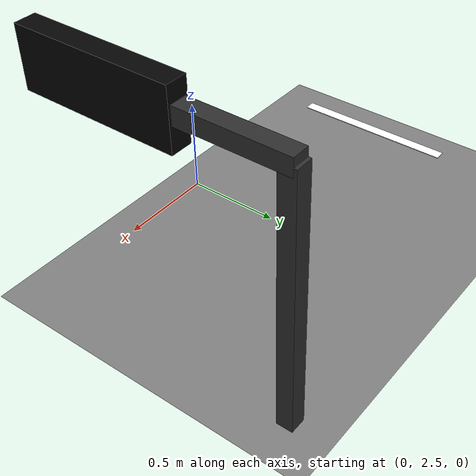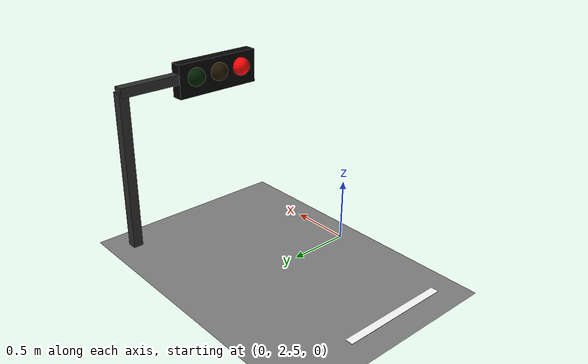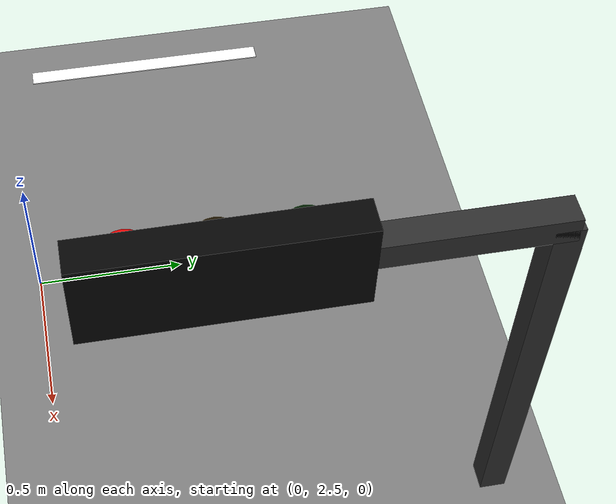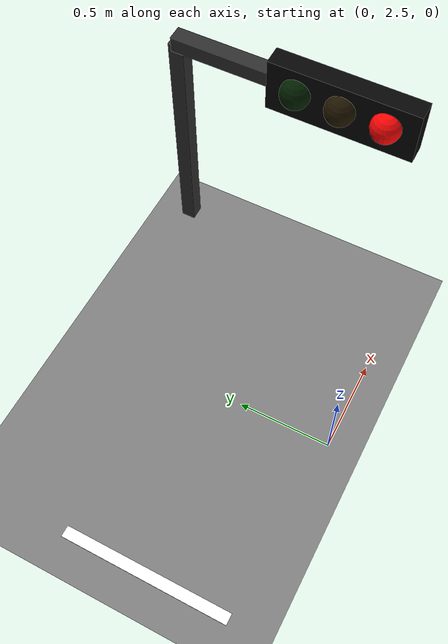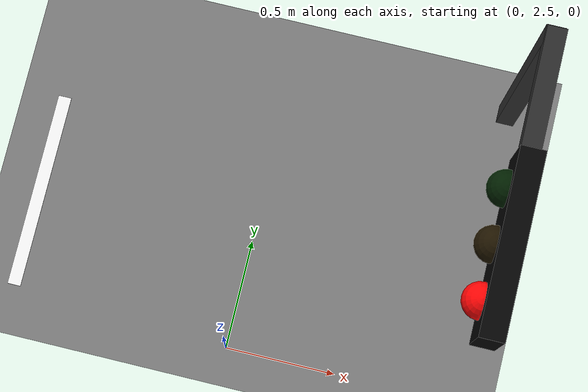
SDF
<sdf version="1.8">
 <world name="default">
  <model name="ground_plane">
   <static>true</static>
   <link name="link">
    <visual name="visual">
     <geometry><plane><normal>0 0 1</normal><size>100 100</size></plane></geometry>
     <material><ambient>0.5 0.5 0.5 1</ambient><diffuse>0.5 0.5 0.5 1</diffuse></material>
    </visual>
   </link>
  </model>
  <model name="race_B_stop_line">
   <static>true</static>
   <pose>-1.0 3.0 0 0 0 0</pose>
   <link name="stop_line_link">
    <visual name="stop_line_visual">
     <pose>0 0 0.024 0 0 0</pose>
     <geometry><box><size>0.06 0.90 0.004</size></box></geometry>
     <material>
      <ambient>1.0 1.0 1.0 1</ambient>
      <diffuse>1.0 1.0 1.0 1</diffuse>
      <emissive>0.2 0.2 0.2 1</emissive>
     </material>
    </visual>
   </link>
  </model>
  <model name="race_B_traffic_signal">
   <static>true</static>
   <pose>1.0 3.0 0 0 0 3.141592653589793</pose>
   <link name="traffic_signal_link">
    <visual name="pole_visual">
     <pose>0 -0.85 0.65 0 0 0</pose>
     <geometry><box><size>0.08 0.08 1.30</size></box></geometry>
     <material><ambient>0.08 0.08 0.08 1</ambient><diffuse>0.18 0.18 0.18 1</diffuse></material>
    </visual>
    <visual name="arm_visual">
     <pose>0 -0.425 1.30 0 0 0</pose>
     <geometry><box><size>0.08 0.90 0.08</size></box></geometry>
     <material><ambient>0.08 0.08 0.08 1</ambient><diffuse>0.18 0.18 0.18 1</diffuse></material>
    </visual>
    <visual name="signal_body_visual">
     <pose>0 0 1.28 0 0 0</pose>
     <geometry><box><size>0.10 0.74 0.28</size></box></geometry>
     <material><ambient>0.01 0.01 0.01 1</ambient><diffuse>0.02 0.02 0.02 1</diffuse></material>
    </visual>
    <visual name="red_lens_visual">
     <pose>0.058 0.22 1.30 0 0 0</pose>
     <geometry><sphere><radius>0.075</radius></sphere></geometry>
     <material>
      <ambient>1.0 0.02 0.02 1</ambient>
      <diffuse>1.0 0.02 0.02 1</diffuse>
      <emissive>1.0 0.02 0.02 1</emissive>
     </material>
    </visual>
    <visual name="yellow_lens_visual">
     <pose>0.058 0 1.30 0 0 0</pose>
     <geometry><sphere><radius>0.075</radius></sphere></geometry>
     <material>
      <ambient>0.12 0.08 0.0 1</ambient>
      <diffuse>0.12 0.08 0.0 1</diffuse>
      <emissive>0.02 0.01 0.0 1</emissive>
     </material>
    </visual>
    <visual name="green_lens_visual">
     <pose>0.058 -0.22 1.30 0 0 0</pose>
     <geometry><sphere><radius>0.075</radius></sphere></geometry>
     <material>
      <ambient>0.0 0.12 0.0 1</ambient>
      <diffuse>0.0 0.12 0.0 1</diffuse>
      <emissive>0.0 0.02 0.0 1</emissive>
     </material>
    </visual>
   </link>
  </model>
 </world>
</sdf>
